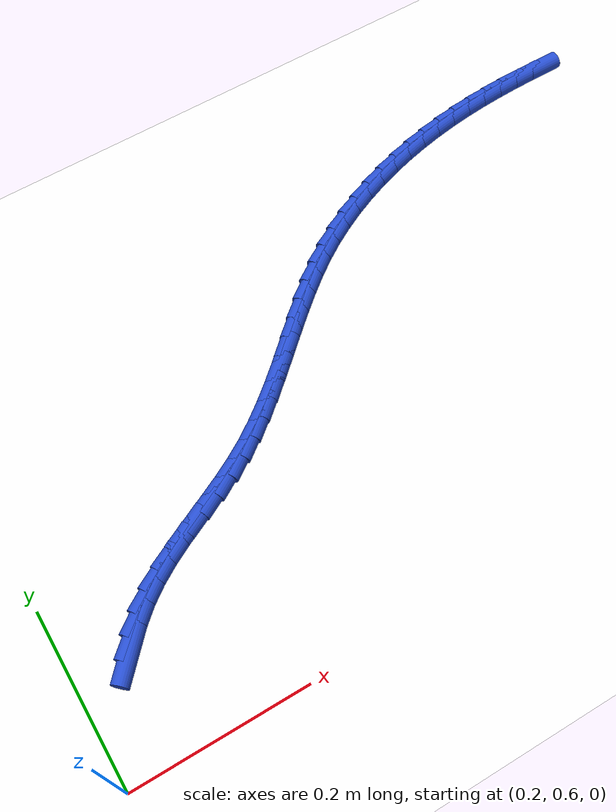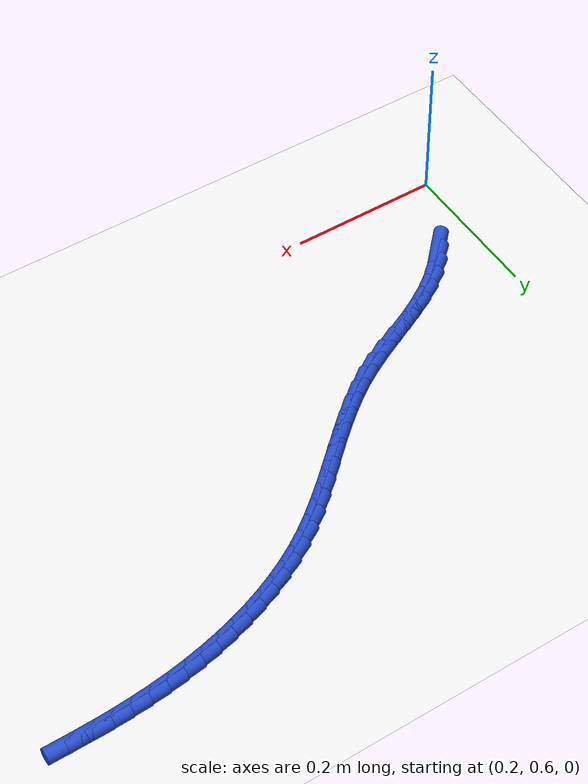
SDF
<sdf version="1.6">
 <world name="default">
  <model name="ground_plane">
   <static>1</static>
   <link name="link">
    <collision name="collision">
     <geometry><plane><normal>0 0 1</normal><size>100 100</size></plane></geometry>
     <surface><friction><ode><mu>100</mu><mu2>50</mu2></ode></friction></surface>
    </collision>
    <visual name="visual">
     <cast_shadows>0</cast_shadows>
     <geometry><plane><normal>0 0 1</normal><size>100 100</size></plane></geometry>
     <material>
      <script><uri>file://media/materials/scripts/gazebo.material</uri><name>Gazebo/WhiteGlow</name></script>
     </material>
    </visual>
   </link>
  </model>
  <model name="line">
   <link name="link_32">
    <pose>0.2657228980449341 0.7184953036585606 0.01 0 1.57 0.8208219893452217</pose>
    <collision name="collision">
     <geometry><cylinder><radius>0.01</radius><length>0.08</length></cylinder></geometry>
    </collision>
    <visual name="visual">
     <material>
      <script><name>Gazebo/Blue</name><uri>file://media/materials/scripts/gazebo.material</uri></script>
     </material>
     <geometry><cylinder><radius>0.01</radius><length>0.08</length></cylinder></geometry>
    </visual>
   </link>
   <link name="link_33">
    <pose>0.2815581373717067 0.7354941382574725 0.01 0 1.57 0.7340380819048063</pose>
    <collision name="collision">
     <geometry><cylinder><radius>0.01</radius><length>0.08</length></cylinder></geometry>
    </collision>
    <visual name="visual">
     <material>
      <script><name>Gazebo/Blue</name><uri>file://media/materials/scripts/gazebo.material</uri></script>
     </material>
     <geometry><cylinder><radius>0.01</radius><length>0.08</length></cylinder></geometry>
    </visual>
   </link>
   <link name="link_34">
    <pose>0.29876352196506195 0.7510171121133489 0.01 0 1.57 0.6395126139656503</pose>
    <collision name="collision">
     <geometry><cylinder><radius>0.01</radius><length>0.08</length></cylinder></geometry>
    </collision>
    <visual name="visual">
     <material>
      <script><name>Gazebo/Blue</name><uri>file://media/materials/scripts/gazebo.material</uri></script>
     </material>
     <geometry><cylinder><radius>0.01</radius><length>0.08</length></cylinder></geometry>
    </visual>
   </link>
   <link name="link_35">
    <pose>0.3174657678247337 0.76492759067717 0.01 0 1.57 0.5566670696537142</pose>
    <collision name="collision">
     <geometry><cylinder><radius>0.01</radius><length>0.08</length></cylinder></geometry>
    </collision>
    <visual name="visual">
     <material>
      <script><name>Gazebo/Blue</name><uri>file://media/materials/scripts/gazebo.material</uri></script>
     </material>
     <geometry><cylinder><radius>0.01</radius><length>0.08</length></cylinder></geometry>
    </visual>
   </link>
   <link name="link_36">
    <pose>0.3375161573066096 0.7774052730402388 0.01 0 1.57 0.4985039872697097</pose>
    <collision name="collision">
     <geometry><cylinder><radius>0.01</radius><length>0.08</length></cylinder></geometry>
    </collision>
    <visual name="visual">
     <material>
      <script><name>Gazebo/Blue</name><uri>file://media/materials/scripts/gazebo.material</uri></script>
     </material>
     <geometry><cylinder><radius>0.01</radius><length>0.08</length></cylinder></geometry>
    </visual>
   </link>
   <link name="link_37">
    <pose>0.358563357671173 0.788862560333518 0.01 0 1.57 0.4640420527576995</pose>
    <collision name="collision">
     <geometry><cylinder><radius>0.01</radius><length>0.08</length></cylinder></geometry>
    </collision>
    <visual name="visual">
     <material>
      <script><name>Gazebo/Blue</name><uri>file://media/materials/scripts/gazebo.material</uri></script>
     </material>
     <geometry><cylinder><radius>0.01</radius><length>0.08</length></cylinder></geometry>
    </visual>
   </link>
   <link name="link_38">
    <pose>0.38025134015018414 0.7997172470445698 0.01 0 1.57 0.4520584453697039</pose>
    <collision name="collision">
     <geometry><cylinder><radius>0.01</radius><length>0.08</length></cylinder></geometry>
    </collision>
    <visual name="visual">
     <material>
      <script><name>Gazebo/Blue</name><uri>file://media/materials/scripts/gazebo.material</uri></script>
     </material>
     <geometry><cylinder><radius>0.01</radius><length>0.08</length></cylinder></geometry>
    </visual>
   </link>
   <link name="link_39">
    <pose>0.4022240759754039 0.810387127660957 0.01 0 1.57 0.4618978438068161</pose>
    <collision name="collision">
     <geometry><cylinder><radius>0.01</radius><length>0.08</length></cylinder></geometry>
    </collision>
    <visual name="visual">
     <material>
      <script><name>Gazebo/Blue</name><uri>file://media/materials/scripts/gazebo.material</uri></script>
     </material>
     <geometry><cylinder><radius>0.01</radius><length>0.08</length></cylinder></geometry>
    </visual>
   </link>
   <link name="link_40">
    <pose>0.42412553637859246 0.8212899966702415 0.01 0 1.57 0.49360357574029795</pose>
    <collision name="collision">
     <geometry><cylinder><radius>0.01</radius><length>0.08</length></cylinder></geometry>
    </collision>
    <visual name="visual">
     <material>
      <script><name>Gazebo/Blue</name><uri>file://media/materials/scripts/gazebo.material</uri></script>
     </material>
     <geometry><cylinder><radius>0.01</radius><length>0.08</length></cylinder></geometry>
    </visual>
   </link>
   <link name="link_41">
    <pose>0.44559969259151044 0.8328436485599858 0.01 0 1.57 0.5472585258388312</pose>
    <collision name="collision">
     <geometry><cylinder><radius>0.01</radius><length>0.08</length></cylinder></geometry>
    </collision>
    <visual name="visual">
     <material>
      <script><name>Gazebo/Blue</name><uri>file://media/materials/scripts/gazebo.material</uri></script>
     </material>
     <geometry><cylinder><radius>0.01</radius><length>0.08</length></cylinder></geometry>
    </visual>
   </link>
   <link name="link_42">
    <pose>0.46629839323533473 0.8454561853802485 0.01 0 1.57 0.6081778418072382</pose>
    <collision name="collision">
     <geometry><cylinder><radius>0.01</radius><length>0.08</length></cylinder></geometry>
    </collision>
    <visual name="visual">
     <material>
      <script><name>Gazebo/Blue</name><uri>file://media/materials/scripts/gazebo.material</uri></script>
     </material>
     <geometry><cylinder><radius>0.01</radius><length>0.08</length></cylinder></geometry>
    </visual>
   </link>
   <link name="link_43">
    <pose>0.48610765157447816 0.8592475901037856 0.01 0 1.57 0.6585960491223576</pose>
    <collision name="collision">
     <geometry><cylinder><radius>0.01</radius><length>0.08</length></cylinder></geometry>
    </collision>
    <visual name="visual">
     <material>
      <script><name>Gazebo/Blue</name><uri>file://media/materials/scripts/gazebo.material</uri></script>
     </material>
     <geometry><cylinder><radius>0.01</radius><length>0.08</length></cylinder></geometry>
    </visual>
   </link>
   <link name="link_44">
    <pose>0.5051815179751064 0.8740080495335601 0.01 0 1.57 0.6972504487326401</pose>
    <collision name="collision">
     <geometry><cylinder><radius>0.01</radius><length>0.08</length></cylinder></geometry>
    </collision>
    <visual name="visual">
     <material>
      <script><name>Gazebo/Blue</name><uri>file://media/materials/scripts/gazebo.material</uri></script>
     </material>
     <geometry><cylinder><radius>0.01</radius><length>0.08</length></cylinder></geometry>
    </visual>
   </link>
   <link name="link_45">
    <pose>0.5236887334696474 0.8895096748948148 0.01 0 1.57 0.7240991831613288</pose>
    <collision name="collision">
     <geometry><cylinder><radius>0.01</radius><length>0.08</length></cylinder></geometry>
    </collision>
    <visual name="visual">
     <material>
      <script><name>Gazebo/Blue</name><uri>file://media/materials/scripts/gazebo.material</uri></script>
     </material>
     <geometry><cylinder><radius>0.01</radius><length>0.08</length></cylinder></geometry>
    </visual>
   </link>
   <link name="link_46">
    <pose>0.5417980390905297 0.9055245774127907 0.01 0 1.57 0.7392102603522721</pose>
    <collision name="collision">
     <geometry><cylinder><radius>0.01</radius><length>0.08</length></cylinder></geometry>
    </collision>
    <visual name="visual">
     <material>
      <script><name>Gazebo/Blue</name><uri>file://media/materials/scripts/gazebo.material</uri></script>
     </material>
     <geometry><cylinder><radius>0.01</radius><length>0.08</length></cylinder></geometry>
    </visual>
   </link>
   <link name="link_47">
    <pose>0.559678175870181 0.9218248683127298 0.01 0 1.57 0.7426499264429451</pose>
    <collision name="collision">
     <geometry><cylinder><radius>0.01</radius><length>0.08</length></cylinder></geometry>
    </collision>
    <visual name="visual">
     <material>
      <script><name>Gazebo/Blue</name><uri>file://media/materials/scripts/gazebo.material</uri></script>
     </material>
     <geometry><cylinder><radius>0.01</radius><length>0.08</length></cylinder></geometry>
    </visual>
   </link>
   <link name="link_48">
    <pose>0.5774978848410298 0.9381826588198747 0.01 0 1.57 0.7344208447195194</pose>
    <collision name="collision">
     <geometry><cylinder><radius>0.01</radius><length>0.08</length></cylinder></geometry>
    </collision>
    <visual name="visual">
     <material>
      <script><name>Gazebo/Blue</name><uri>file://media/materials/scripts/gazebo.material</uri></script>
     </material>
     <geometry><cylinder><radius>0.01</radius><length>0.08</length></cylinder></geometry>
    </visual>
   </link>
   <link name="link_49">
    <pose>0.5954259070355041 0.954370060159466 0.01 0 1.57 0.714447890086851</pose>
    <collision name="collision">
     <geometry><cylinder><radius>0.01</radius><length>0.08</length></cylinder></geometry>
    </collision>
    <visual name="visual">
     <material>
      <script><name>Gazebo/Blue</name><uri>file://media/materials/scripts/gazebo.material</uri></script>
     </material>
     <geometry><cylinder><radius>0.01</radius><length>0.08</length></cylinder></geometry>
    </visual>
   </link>
   <link name="link_50">
    <pose>0.6136309834860321 0.9701591835567466 0.01 0 1.57 0.6826111355652248</pose>
    <collision name="collision">
     <geometry><cylinder><radius>0.01</radius><length>0.08</length></cylinder></geometry>
    </collision>
    <visual name="visual">
     <material>
      <script><name>Gazebo/Blue</name><uri>file://media/materials/scripts/gazebo.material</uri></script>
     </material>
     <geometry><cylinder><radius>0.01</radius><length>0.08</length></cylinder></geometry>
    </visual>
   </link>
   <link name="link_51">
    <pose>0.6322818552250419 0.9853221402369577 0.01 0 1.57 0.6388288600864945</pose>
    <collision name="collision">
     <geometry><cylinder><radius>0.01</radius><length>0.08</length></cylinder></geometry>
    </collision>
    <visual name="visual">
     <material>
      <script><name>Gazebo/Blue</name><uri>file://media/materials/scripts/gazebo.material</uri></script>
     </material>
     <geometry><cylinder><radius>0.01</radius><length>0.08</length></cylinder></geometry>
    </visual>
   </link>
   <link name="link_52">
    <pose>0.6515472632849617 0.9996310414253418 0.01 0 1.57 0.5837840654750404</pose>
    <collision name="collision">
     <geometry><cylinder><radius>0.01</radius><length>0.08</length></cylinder></geometry>
    </collision>
    <visual name="visual">
     <material>
      <script><name>Gazebo/Blue</name><uri>file://media/materials/scripts/gazebo.material</uri></script>
     </material>
     <geometry><cylinder><radius>0.01</radius><length>0.08</length></cylinder></geometry>
    </visual>
   </link>
   <link name="link_53">
    <pose>0.6715857114225281 1.0128682454057343 0.01 0 1.57 0.5258936320840149</pose>
    <collision name="collision">
     <geometry><cylinder><radius>0.01</radius><length>0.08</length></cylinder></geometry>
    </collision>
    <visual name="visual">
     <material>
      <script><name>Gazebo/Blue</name><uri>file://media/materials/scripts/gazebo.material</uri></script>
     </material>
     <geometry><cylinder><radius>0.01</radius><length>0.08</length></cylinder></geometry>
    </visual>
   </link>
   <link name="link_54">
    <pose>0.6924144240672523 1.0249575247979672 0.01 0 1.57 0.47110887614652663</pose>
    <collision name="collision">
     <geometry><cylinder><radius>0.01</radius><length>0.08</length></cylinder></geometry>
    </collision>
    <visual name="visual">
     <material>
      <script><name>Gazebo/Blue</name><uri>file://media/materials/scripts/gazebo.material</uri></script>
     </material>
     <geometry><cylinder><radius>0.01</radius><length>0.08</length></cylinder></geometry>
    </visual>
   </link>
   <link name="link_55">
    <pose>0.7139476508497763 1.0359257254250915 0.01 0 1.57 0.4194306270549513</pose>
    <collision name="collision">
     <geometry><cylinder><radius>0.01</radius><length>0.08</length></cylinder></geometry>
    </collision>
    <visual name="visual">
     <material>
      <script><name>Gazebo/Blue</name><uri>file://media/materials/scripts/gazebo.material</uri></script>
     </material>
     <geometry><cylinder><radius>0.01</radius><length>0.08</length></cylinder></geometry>
    </visual>
   </link>
   <link name="link_56">
    <pose>0.7360973060315656 1.045802030711054 0.01 0 1.57 0.37067570156111307</pose>
    <collision name="collision">
     <geometry><cylinder><radius>0.01</radius><length>0.08</length></cylinder></geometry>
    </collision>
    <visual name="visual">
     <material>
      <script><name>Gazebo/Blue</name><uri>file://media/materials/scripts/gazebo.material</uri></script>
     </material>
     <geometry><cylinder><radius>0.01</radius><length>0.08</length></cylinder></geometry>
    </visual>
   </link>
   <link name="link_57">
    <pose>0.7587753038740852 1.0546156240797993 0.01 0 1.57 0.32462784409352474</pose>
    <collision name="collision">
     <geometry><cylinder><radius>0.01</radius><length>0.08</length></cylinder></geometry>
    </collision>
    <visual name="visual">
     <material>
      <script><name>Gazebo/Blue</name><uri>file://media/materials/scripts/gazebo.material</uri></script>
     </material>
     <geometry><cylinder><radius>0.01</radius><length>0.08</length></cylinder></geometry>
    </visual>
   </link>
   <link name="link_58">
    <pose>0.7818935586388001 1.0623956889552728 0.01 0 1.57 0.28105029638302537</pose>
    <collision name="collision">
     <geometry><cylinder><radius>0.01</radius><length>0.08</length></cylinder></geometry>
    </collision>
    <visual name="visual">
     <material>
      <script><name>Gazebo/Blue</name><uri>file://media/materials/scripts/gazebo.material</uri></script>
     </material>
     <geometry><cylinder><radius>0.01</radius><length>0.08</length></cylinder></geometry>
    </visual>
   </link>
   <link name="link_59">
    <pose>0.8053639845871757 1.0691714087614197 0.01 0 1.57 0.23969495085195333</pose>
    <collision name="collision">
     <geometry><cylinder><radius>0.01</radius><length>0.08</length></cylinder></geometry>
    </collision>
    <visual name="visual">
     <material>
      <script><name>Gazebo/Blue</name><uri>file://media/materials/scripts/gazebo.material</uri></script>
     </material>
     <geometry><cylinder><radius>0.01</radius><length>0.08</length></cylinder></geometry>
    </visual>
   </link>
   <link name="link_60">
    <pose>0.829098495980677 1.0749719669221856 0.01 0 1.57 0.20030847614131383</pose>
    <collision name="collision">
     <geometry><cylinder><radius>0.01</radius><length>0.08</length></cylinder></geometry>
    </collision>
    <visual name="visual">
     <material>
      <script><name>Gazebo/Blue</name><uri>file://media/materials/scripts/gazebo.material</uri></script>
     </material>
     <geometry><cylinder><radius>0.01</radius><length>0.08</length></cylinder></geometry>
    </visual>
   </link>
   <link name="link_61">
    <pose>0.853009007080769 1.0798265468615158 0.01 0 1.57 0.16263588340952698</pose>
    <collision name="collision">
     <geometry><cylinder><radius>0.01</radius><length>0.08</length></cylinder></geometry>
    </collision>
    <visual name="visual">
     <material>
      <script><name>Gazebo/Blue</name><uri>file://media/materials/scripts/gazebo.material</uri></script>
     </material>
     <geometry><cylinder><radius>0.01</radius><length>0.08</length></cylinder></geometry>
    </visual>
   </link>
   <link name="link_62">
    <pose>0.8770074321489171 1.0837643320033559 0.01 0 1.57 0.12665063717586408</pose>
    <collision name="collision">
     <geometry><cylinder><radius>0.01</radius><length>0.08</length></cylinder></geometry>
    </collision>
    <visual name="visual">
     <material>
      <script><name>Gazebo/Blue</name><uri>file://media/materials/scripts/gazebo.material</uri></script>
     </material>
     <geometry><cylinder><radius>0.01</radius><length>0.08</length></cylinder></geometry>
    </visual>
   </link>
   <link name="link_63">
    <pose>0.901015671403718 1.086821353574677 0.01 0 1.57 0.09371812829061692</pose>
    <collision name="collision">
     <geometry><cylinder><radius>0.01</radius><length>0.08</length></cylinder></geometry>
    </collision>
    <visual name="visual">
     <material>
      <script><name>Gazebo/Blue</name><uri>file://media/materials/scripts/gazebo.material</uri></script>
     </material>
     <geometry><cylinder><radius>0.01</radius><length>0.08</length></cylinder></geometry>
    </visual>
   </link>
   <link name="link_64">
    <pose>0.9250196896062849 1.0890775746321515 0.01 0 1.57 0.06457753009806019</pose>
    <collision name="collision">
     <geometry><cylinder><radius>0.01</radius><length>0.08</length></cylinder></geometry>
    </collision>
    <visual name="visual">
     <material>
      <script><name>Gazebo/Blue</name><uri>file://media/materials/scripts/gazebo.material</uri></script>
     </material>
     <geometry><cylinder><radius>0.01</radius><length>0.08</length></cylinder></geometry>
    </visual>
   </link>
   <link name="link_65">
    <pose>0.9490307534528659 1.0906303088645148 0.01 0 1.57 0.039373140795397464</pose>
    <collision name="collision">
     <geometry><cylinder><radius>0.01</radius><length>0.08</length></cylinder></geometry>
    </collision>
    <visual name="visual">
     <material>
      <script><name>Gazebo/Blue</name><uri>file://media/materials/scripts/gazebo.material</uri></script>
     </material>
     <geometry><cylinder><radius>0.01</radius><length>0.08</length></cylinder></geometry>
    </visual>
   </link>
   <link name="link_66">
    <pose>0.9730601917125367 1.091576912526526 0.01 0 1.57 0.018196036847997997</pose>
    <collision name="collision">
     <geometry><cylinder><radius>0.01</radius><length>0.08</length></cylinder></geometry>
    </collision>
    <visual name="visual">
     <material>
      <script><name>Gazebo/Blue</name><uri>file://media/materials/scripts/gazebo.material</uri></script>
     </material>
     <geometry><cylinder><radius>0.01</radius><length>0.08</length></cylinder></geometry>
    </visual>
   </link>
   <link name="link_67">
    <pose>0.9971193331543736 1.0920147418729458 0.01 0 1.57 0.0010958956428662179</pose>
    <collision name="collision">
     <geometry><cylinder><radius>0.01</radius><length>0.08</length></cylinder></geometry>
    </collision>
    <visual name="visual">
     <material>
      <script><name>Gazebo/Blue</name><uri>file://media/materials/scripts/gazebo.material</uri></script>
     </material>
     <geometry><cylinder><radius>0.01</radius><length>0.08</length></cylinder></geometry>
    </visual>
   </link>
  </model>
 </world>
</sdf>
